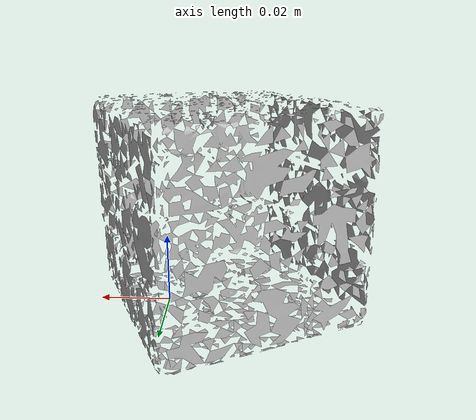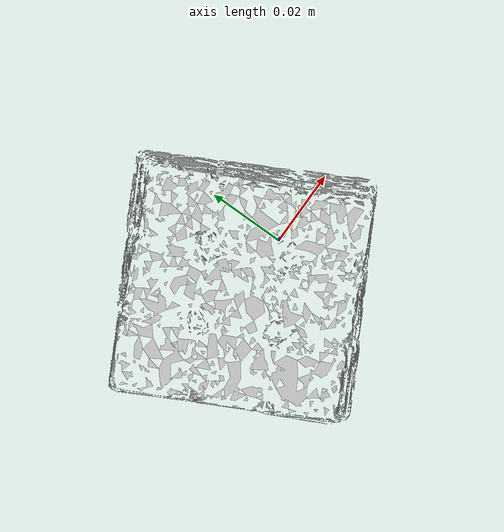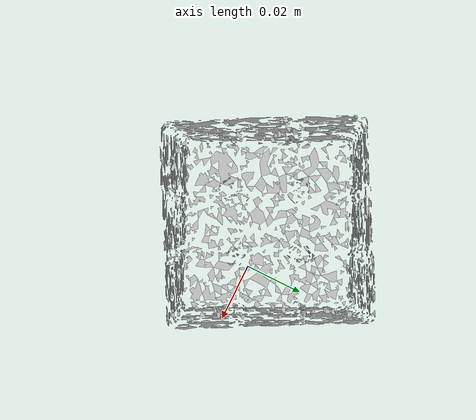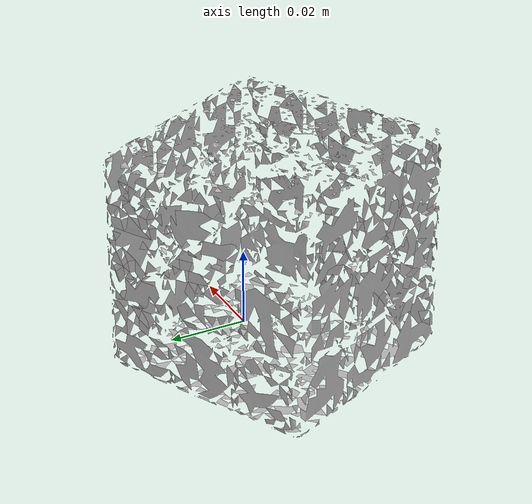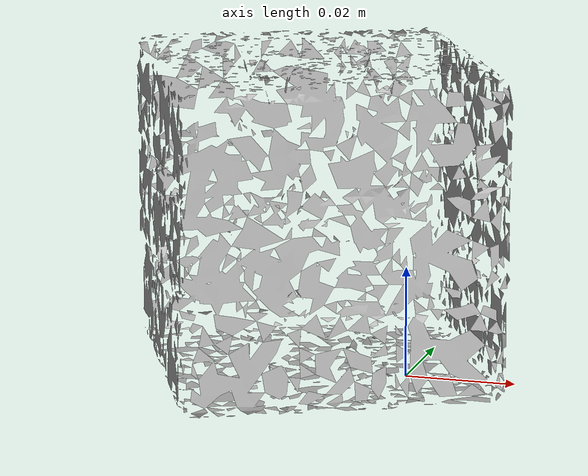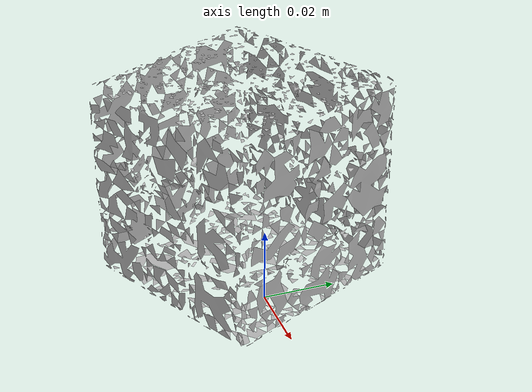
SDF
<?xml version='1.0'?>
<sdf version="1.4">
  <model name="rubiks_cube">
    <static>false</static>
    <link name="link">
      <inertial>
        <pose>-0.016219049878342388 -0.00048529056442859776 0.028589928178413302 2.3648333321941553 -0.1647337210077352 -2.669285494835177</pose>
        <mass>0.00018287731685751214</mass>
        <inertia>
          <ixx>9.85204038073643e-08</ixx>
          <ixy>8.061824208102976e-24</ixy>
          <ixz>-2.097640522420731e-24</ixz>
          <iyy>9.833577391876143e-08</iyy>
          <iyz>2.1321925661475815e-23</iyz>
          <izz>9.818197457535545e-08</izz>
        </inertia>
      </inertial>
      <collision name="collision">
        <geometry>
          <mesh>
            <!-- Use a downsampled mesh for collisions -->
            <uri>model://077_rubiks_cube/downsampled.obj</uri>
	        </mesh>
        </geometry>
        <surface>
      </surface>
      </collision>
      <visual name="visual">
        <geometry>
          <mesh>
            <uri>model://077_rubiks_cube/google_16k/textured.obj</uri>
	        </mesh>
        </geometry>
        <material>
          <script>
            <uri>model://077_rubiks_cube/rubiks_cube.material</uri>
            <name>rubiks_cube</name>
          </script>
        </material>
      </visual>
    </link>
  </model>
</sdf>
